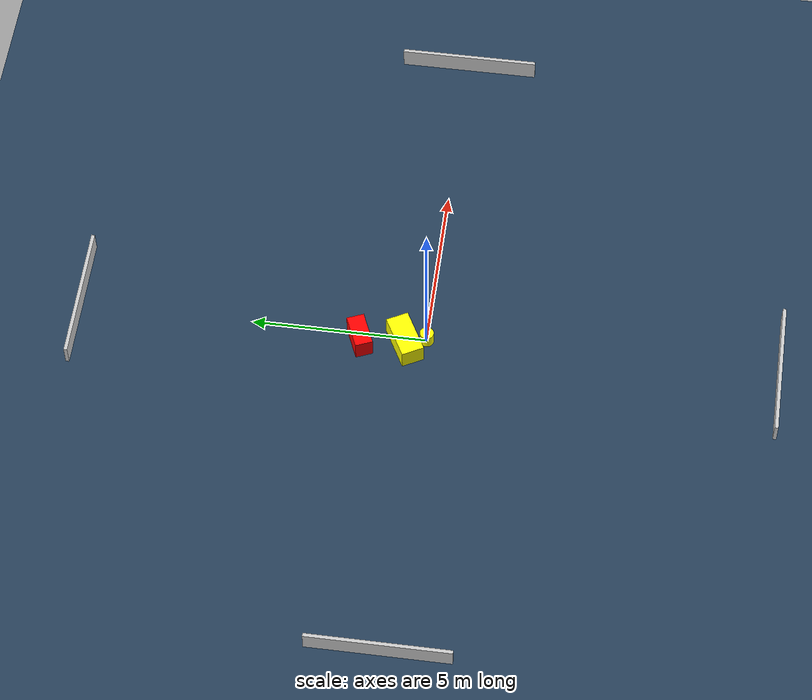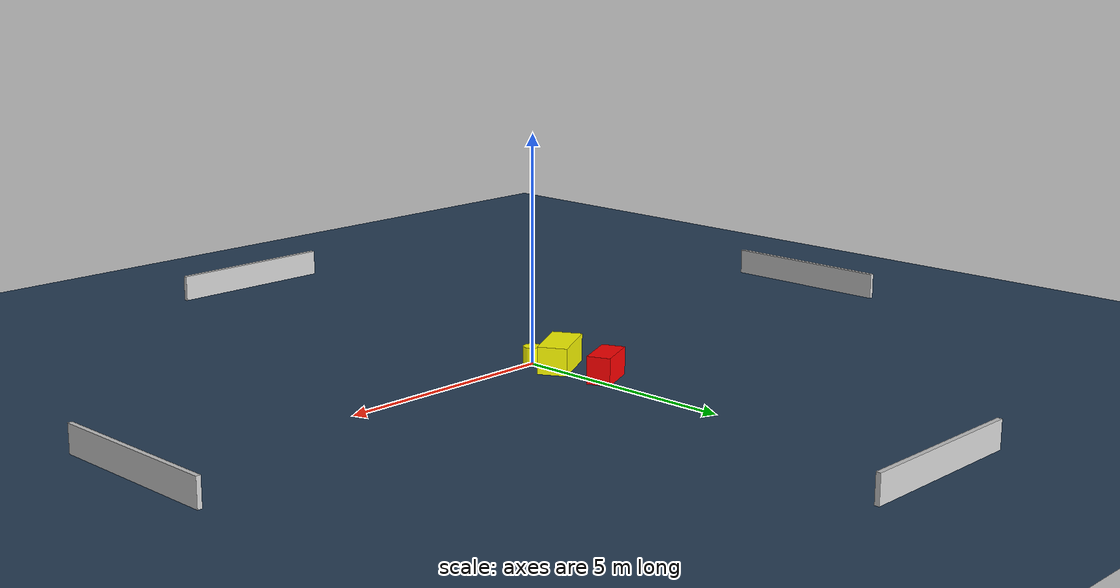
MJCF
<?xml version="1.0" ?>
<mujoco model="generated_environment">
  <option timestep="0.01" integrator="RK4" cone="elliptic"/>
  <default>
    <geom density="1"/>
  </default>
  <asset>
    <texture builtin="gradient" height="3072" name="skybox" rgb1="0.3 0.5 0.7" rgb2="0 0 0" type="skybox" width="512"/>
    <texture builtin="checker" height="300" name="groundplane" rgb1="0.2 0.3 0.4" rgb2="0.1 0.2 0.3" type="2d" width="300"/>
    <material name="groundplane" reflectance="0.2" texrepeat="5 5" texture="groundplane"/>
  </asset>
  <worldbody>
    <light dir="0 0 -1" directional="true" pos="0 0 1.5"/>
    <geom condim="3" friction="0.5 0.005 0.001" material="groundplane" name="floor" pos="0 0 0" size="0 0 0.05" type="plane"/>
    <body name="walls">
      <geom name="wall_1" condim="4" pos="-10.0 0.0 0.3" rgba="0.800000011920929 0.800000011920929 0.800000011920929 1.0" size="0.05 2.0 0.3" type="box"/>
      <geom name="wall_2" condim="4" pos="10.0 0.0 0.3" rgba="0.800000011920929 0.800000011920929 0.800000011920929 1.0" size="0.05 2.0 0.3" type="box"/>
      <geom name="wall_3" condim="4" pos="0.0 -10.0 0.3" rgba="0.800000011920929 0.800000011920929 0.800000011920929 1.0" size="2.0 0.05 0.3" type="box"/>
      <geom name="wall_4" condim="4" pos="0.0 10.0 0.3" rgba="0.800000011920929 0.800000011920929 0.800000011920929 1.0" size="2.0 0.05 0.3" type="box"/>
    </body>
    <body name="robot">
      <joint name="joint_x" type="slide" pos="0 0 0" axis="1 0 0"/>
      <joint name="joint_y" type="slide" pos="0 0 0" axis="0 1 0"/>
      <geom name="robot" type="cylinder" pos="0.0 0.0 0.2" size="0.2 0.2 0.0" mass="5.0" friction="1.0 0.005 0.0001" condim="4" rgba="1.0 1.0 0.0 1.0"/>
    </body>
    <body name="obstacle_1_movable">
      <geom name="obstacle_1_movable" condim="4" pos="-0.22807746980554452 0.5954226942283521 0.3" euler="0 0 208.36535851882184" friction="0.0 0.005 0.001" rgba="1.0 1.0 0.0 1.0" size="0.63876080935104 0.3277239833052764 0.3" type="box" mass="0.1"/>
      <joint type="free"/>
    </body>
    <body name="obstacle_2_static">
      <geom name="obstacle_2_static" condim="4" pos="-0.26660257196038156 1.8824301547062454 0.3" euler="0 0 292.92185099469566" friction="0.0 0.005 0.001" rgba="1.0 0.0 0.0 1.0" size="0.2527587245109645 0.4879579116119705 0.3" type="box"/>
    </body>
  </worldbody>
  <actuator>
    <motor name="actuator_x" joint="joint_x" gear="1" ctrlrange="-1 1"/>
    <motor name="actuator_y" joint="joint_y" gear="1" ctrlrange="-1 1"/>
  </actuator>
</mujoco>
